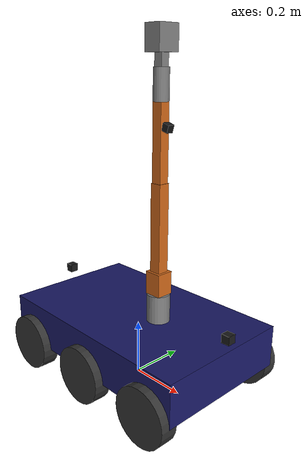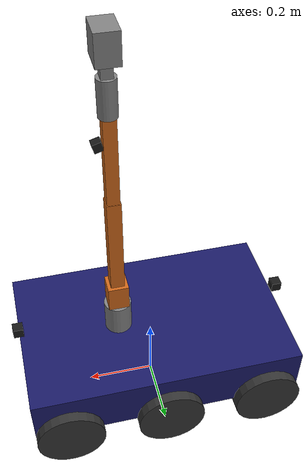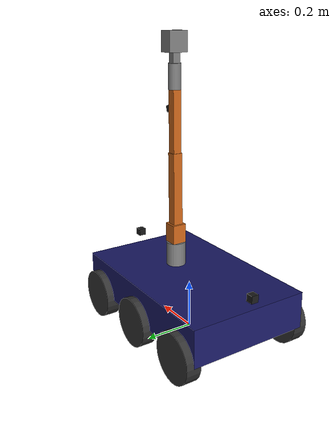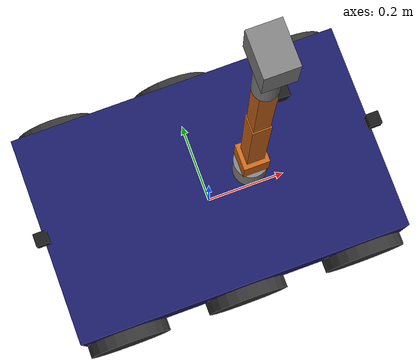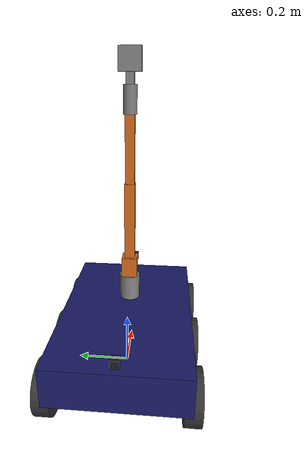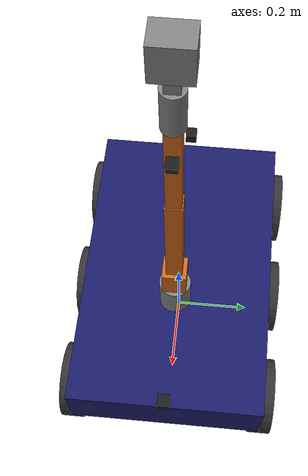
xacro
<?xml version="1.0"?>
<robot xmlns:xacro="http://www.ros.org/wiki/xacro" name="deakin_rover">

  <!-- ==================== PROPERTIES ==================== -->
  <!-- Chassis dimensions (meters) — HARDWARE UPGRADE: measure real rover -->
  <xacro:property name="chassis_length" value="0.8"/>
  <xacro:property name="chassis_width" value="0.5"/>
  <xacro:property name="chassis_height" value="0.15"/>
  <xacro:property name="chassis_mass" value="15.0"/>

  <!-- Wheel properties -->
  <xacro:property name="wheel_radius" value="0.1"/>
  <xacro:property name="wheel_width" value="0.06"/>
  <xacro:property name="wheel_mass" value="0.5"/>
  <xacro:property name="wheel_separation" value="0.5"/>

  <!-- Wheel positions (from base_link center) -->
  <xacro:property name="front_x" value="0.3"/>
  <xacro:property name="mid_x" value="0.0"/>
  <xacro:property name="rear_x" value="-0.3"/>

  <!-- Arm link lengths (meters) — HARDWARE UPGRADE: measure real arm -->
  <xacro:property name="arm_base_height" value="0.1"/>
  <xacro:property name="upper_arm_length" value="0.3"/>
  <xacro:property name="forearm_length" value="0.25"/>
  <xacro:property name="wrist_length" value="0.1"/>
  <xacro:property name="gripper_length" value="0.08"/>

  <!-- ==================== MACROS ==================== -->

  <!-- Inertia for a box -->
  <xacro:macro name="box_inertia" params="mass x y z">
    <inertial>
      <mass value="${mass}"/>
      <inertia ixx="${mass*(y*y+z*z)/12}" ixy="0" ixz="0"
               iyy="${mass*(x*x+z*z)/12}" iyz="0"
               izz="${mass*(x*x+y*y)/12}"/>
    </inertial>
  </xacro:macro>

  <!-- Inertia for a cylinder -->
  <xacro:macro name="cylinder_inertia" params="mass r l">
    <inertial>
      <mass value="${mass}"/>
      <inertia ixx="${mass*(3*r*r+l*l)/12}" ixy="0" ixz="0"
               iyy="${mass*(3*r*r+l*l)/12}" iyz="0"
               izz="${mass*r*r/2}"/>
    </inertial>
  </xacro:macro>

  <!-- Wheel macro -->
  <xacro:macro name="wheel" params="name x y">
    <link name="${name}">
      <visual>
        <geometry><cylinder radius="${wheel_radius}" length="${wheel_width}"/></geometry>
        <material name="dark_grey"><color rgba="0.2 0.2 0.2 1"/></material>
      </visual>
      <collision>
        <geometry><cylinder radius="${wheel_radius}" length="${wheel_width}"/></geometry>
      </collision>
      <xacro:cylinder_inertia mass="${wheel_mass}" r="${wheel_radius}" l="${wheel_width}"/>
    </link>
    <joint name="${name}_joint" type="continuous">
      <parent link="base_link"/>
      <child link="${name}"/>
      <origin xyz="${x} ${y} 0" rpy="${-pi/2} 0 0"/>
      <axis xyz="0 0 1"/>
    </joint>
  </xacro:macro>

  <!-- ==================== BASE ==================== -->

  <link name="base_footprint"/>

  <link name="base_link">
    <visual>
      <geometry><box size="${chassis_length} ${chassis_width} ${chassis_height}"/></geometry>
      <origin xyz="0 0 ${chassis_height/2}"/>
      <material name="blue"><color rgba="0.1 0.1 0.4 1"/></material>
    </visual>
    <collision>
      <geometry><box size="${chassis_length} ${chassis_width} ${chassis_height}"/></geometry>
      <origin xyz="0 0 ${chassis_height/2}"/>
    </collision>
    <xacro:box_inertia mass="${chassis_mass}" x="${chassis_length}" y="${chassis_width}" z="${chassis_height}"/>
  </link>

  <joint name="base_footprint_joint" type="fixed">
    <parent link="base_footprint"/>
    <child link="base_link"/>
    <origin xyz="0 0 ${wheel_radius}"/>
  </joint>

  <!-- ==================== WHEELS ==================== -->

  <xacro:wheel name="left_front_wheel"  x="${front_x}" y="${wheel_separation/2}"/>
  <xacro:wheel name="left_mid_wheel"    x="${mid_x}"   y="${wheel_separation/2}"/>
  <xacro:wheel name="left_rear_wheel"   x="${rear_x}"  y="${wheel_separation/2}"/>
  <xacro:wheel name="right_front_wheel" x="${front_x}" y="${-wheel_separation/2}"/>
  <xacro:wheel name="right_mid_wheel"   x="${mid_x}"   y="${-wheel_separation/2}"/>
  <xacro:wheel name="right_rear_wheel"  x="${rear_x}"  y="${-wheel_separation/2}"/>

  <!-- ==================== ARM ==================== -->

  <link name="arm_base_link">
    <visual>
      <geometry><cylinder radius="0.04" length="${arm_base_height}"/></geometry>
      <origin xyz="0 0 ${arm_base_height/2}"/>
      <material name="grey"><color rgba="0.5 0.5 0.5 1"/></material>
    </visual>
    <collision>
      <geometry><cylinder radius="0.04" length="${arm_base_height}"/></geometry>
      <origin xyz="0 0 ${arm_base_height/2}"/>
    </collision>
    <xacro:cylinder_inertia mass="0.5" r="0.04" l="${arm_base_height}"/>
  </link>

  <joint name="arm_base_joint" type="fixed">
    <parent link="base_link"/>
    <child link="arm_base_link"/>
    <origin xyz="0.1 0 ${chassis_height}"/>
  </joint>

  <!-- Joint 1: base_yaw (revolute, Z-axis) -->
  <link name="shoulder_link">
    <visual>
      <geometry><box size="0.06 0.06 0.08"/></geometry>
      <origin xyz="0 0 0.04"/>
      <material name="orange"><color rgba="0.8 0.4 0.1 1"/></material>
    </visual>
    <xacro:box_inertia mass="0.3" x="0.06" y="0.06" z="0.08"/>
  </link>
  <joint name="base_yaw" type="revolute">
    <parent link="arm_base_link"/>
    <child link="shoulder_link"/>
    <origin xyz="0 0 ${arm_base_height}"/>
    <axis xyz="0 0 1"/>
    <limit lower="-3.14" upper="3.14" velocity="10.0" effort="1.2"/>
  </joint>

  <!-- Joint 2: shoulder_pitch (revolute, Y-axis) -->
  <link name="upper_arm_link">
    <visual>
      <geometry><box size="0.04 0.04 ${upper_arm_length}"/></geometry>
      <origin xyz="0 0 ${upper_arm_length/2}"/>
      <material name="orange"/>
    </visual>
    <xacro:box_inertia mass="1.0" x="0.04" y="0.04" z="${upper_arm_length}"/>
  </link>
  <joint name="shoulder_pitch" type="revolute">
    <parent link="shoulder_link"/>
    <child link="upper_arm_link"/>
    <origin xyz="0 0 0.08"/>
    <axis xyz="0 1 0"/>
    <limit lower="-1.57" upper="1.57" velocity="5.0" effort="12.0"/>
  </joint>

  <!-- Joint 3: elbow_pitch (revolute, Y-axis) -->
  <link name="forearm_link">
    <visual>
      <geometry><box size="0.035 0.035 ${forearm_length}"/></geometry>
      <origin xyz="0 0 ${forearm_length/2}"/>
      <material name="orange"/>
    </visual>
    <xacro:box_inertia mass="0.6" x="0.035" y="0.035" z="${forearm_length}"/>
  </link>
  <joint name="elbow_pitch" type="revolute">
    <parent link="upper_arm_link"/>
    <child link="forearm_link"/>
    <origin xyz="0 0 ${upper_arm_length}"/>
    <axis xyz="0 1 0"/>
    <limit lower="-2.35" upper="2.35" velocity="5.0" effort="12.0"/>
  </joint>

  <!-- Joint 4: wrist_roll (revolute, Z-axis) -->
  <link name="wrist_link">
    <visual>
      <geometry><cylinder radius="0.025" length="${wrist_length}"/></geometry>
      <origin xyz="0 0 ${wrist_length/2}"/>
      <material name="grey"/>
    </visual>
    <xacro:cylinder_inertia mass="0.2" r="0.025" l="${wrist_length}"/>
  </link>
  <joint name="wrist_roll" type="revolute">
    <parent link="forearm_link"/>
    <child link="wrist_link"/>
    <origin xyz="0 0 ${forearm_length}"/>
    <axis xyz="0 0 1"/>
    <limit lower="-3.14" upper="3.14" velocity="8.0" effort="3.6"/>
  </joint>

  <!-- Joint 5: wrist_pitch (revolute, Y-axis) -->
  <link name="wrist_pitch_link">
    <visual>
      <geometry><box size="0.03 0.03 0.04"/></geometry>
      <origin xyz="0 0 0.02"/>
      <material name="grey"/>
    </visual>
    <xacro:box_inertia mass="0.1" x="0.03" y="0.03" z="0.04"/>
  </link>
  <joint name="wrist_pitch" type="revolute">
    <parent link="wrist_link"/>
    <child link="wrist_pitch_link"/>
    <origin xyz="0 0 ${wrist_length}"/>
    <axis xyz="0 1 0"/>
    <limit lower="-1.57" upper="1.57" velocity="8.0" effort="3.6"/>
  </joint>

  <!-- Joint 6: gripper (revolute, Z-axis) -->
  <link name="gripper_link">
    <visual>
      <geometry><box size="0.06 0.08 ${gripper_length}"/></geometry>
      <origin xyz="0 0 ${gripper_length/2}"/>
      <material name="grey"/>
    </visual>
    <xacro:box_inertia mass="0.15" x="0.06" y="0.08" z="${gripper_length}"/>
  </link>
  <joint name="gripper" type="revolute">
    <parent link="wrist_pitch_link"/>
    <child link="gripper_link"/>
    <origin xyz="0 0 0.04"/>
    <axis xyz="0 0 1"/>
    <limit lower="0" upper="1.57" velocity="10.0" effort="1.2"/>
  </joint>

  <!-- ==================== CAMERAS ==================== -->

  <!-- Front camera -->
  <link name="camera1_link">
    <visual>
      <geometry><box size="0.03 0.03 0.03"/></geometry>
      <material name="black"><color rgba="0.1 0.1 0.1 1"/></material>
    </visual>
  </link>
  <joint name="camera1_joint" type="fixed">
    <parent link="base_link"/>
    <child link="camera1_link"/>
    <origin xyz="${chassis_length/2} 0 ${chassis_height + 0.05}" rpy="0 0 0"/>
  </joint>

  <!-- Rear camera -->
  <link name="camera2_link">
    <visual>
      <geometry><box size="0.03 0.03 0.03"/></geometry>
      <material name="black"/>
    </visual>
  </link>
  <joint name="camera2_joint" type="fixed">
    <parent link="base_link"/>
    <child link="camera2_link"/>
    <origin xyz="${-chassis_length/2} 0 ${chassis_height + 0.05}" rpy="0 0 3.14159"/>
  </joint>

  <!-- Arm camera (mounted on forearm) -->
  <link name="camera3_link">
    <visual>
      <geometry><box size="0.025 0.025 0.025"/></geometry>
      <material name="black"/>
    </visual>
  </link>
  <joint name="camera3_joint" type="fixed">
    <parent link="forearm_link"/>
    <child link="camera3_link"/>
    <origin xyz="0.03 0 ${forearm_length * 0.7}" rpy="0 0.3 0"/>
  </joint>

</robot>
